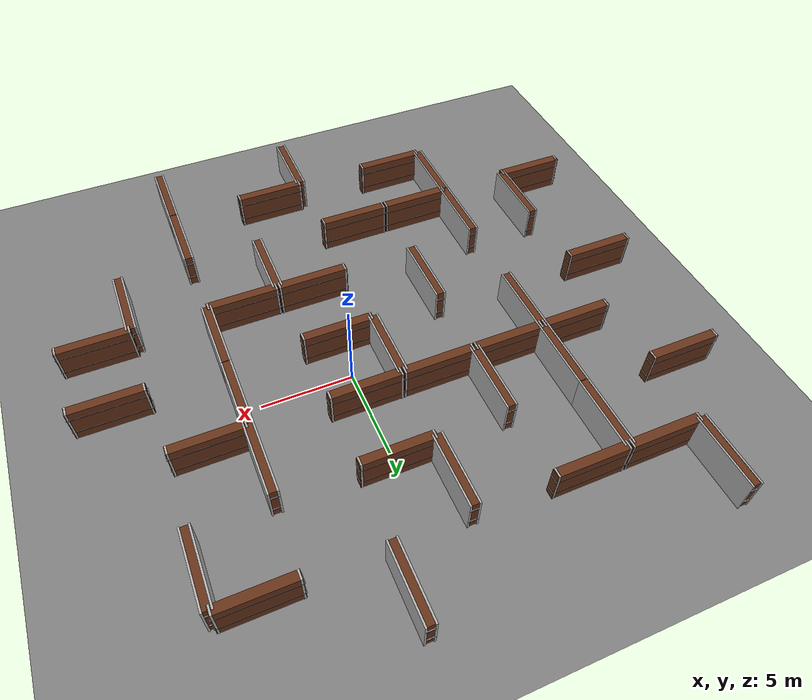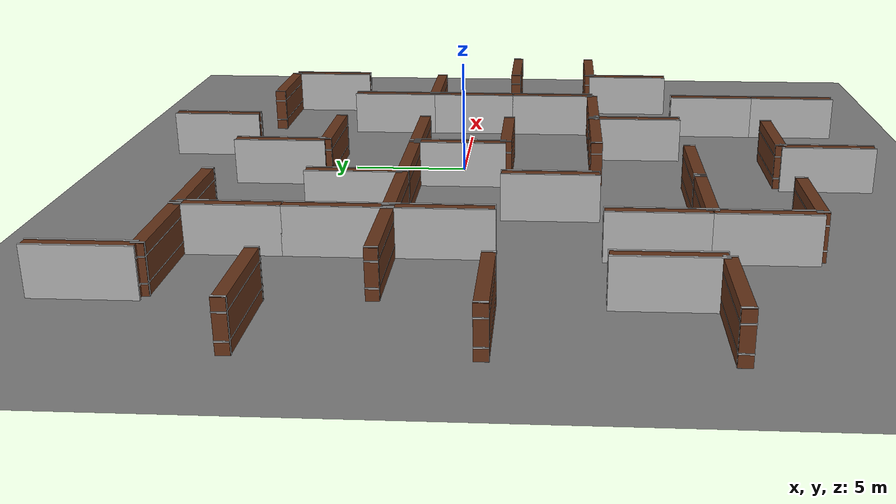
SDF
<?xml version="1.0" ?>
<sdf version="1.9">
  <world name="labyrinth">
    <physics name="1ms" type="ignored">
      <max_step_size>0.001</max_step_size>
      <real_time_factor>1.0</real_time_factor>
    </physics>
    <plugin filename="gz-sim-physics-system" name="gz::sim::systems::Physics"/>
    <plugin filename="gz-sim-user-commands-system" name="gz::sim::systems::UserCommands"/>
    <plugin filename="gz-sim-scene-broadcaster-system" name="gz::sim::systems::SceneBroadcaster"/>
    <plugin filename="gz-sim-sensors-system" name="gz::sim::systems::Sensors"><render_engine>ogre2</render_engine></plugin>
    <plugin filename="gz-sim-imu-system" name="gz::sim::systems::Imu"/>

    <light type="directional" name="sun"><pose>0 0 10 0 0 0</pose></light>
    <model name="ground_plane">
      <static>true</static>
      <pose>0 0 0 0 0 0</pose>
      <link name="link">
        <collision name="collision"><geometry><plane><normal>0 0 1</normal><size>500 500</size></plane></geometry></collision>
        <visual name="visual"><geometry><plane><normal>0 0 1</normal><size>500 500</size></plane></geometry><material><ambient>0.5 0.5 0.5 1</ambient><diffuse>0.5 0.5 0.5 1</diffuse></material></visual>
      </link>
    </model>

    <model name="wall_0">
      <static>true</static>
      <pose>-16.0 6.0 1 0 0 0</pose>
      <link name="link">
        <collision name="col"><geometry><box><size>4.0 0.5 2.0</size></box></geometry></collision>
        <!-- Brown solid core -->
        <visual name="vis_core">
          <geometry><box><size>3.96 0.495 1.98</size></box></geometry>
          <material><ambient>0.4 0.2 0.1 1</ambient><diffuse>0.4 0.2 0.1 1</diffuse></material>
        </visual>
        <!-- Grey horizontal grid lines -->
        <visual name="vis_h1">
          <pose>0 0 -0.5 0 0 0</pose>
          <geometry><box><size>4.04 0.505 0.05</size></box></geometry>
          <material><ambient>0.7 0.7 0.7 1</ambient></material>
        </visual>
        <visual name="vis_h2">
          <pose>0 0 0.5 0 0 0</pose>
          <geometry><box><size>4.04 0.505 0.05</size></box></geometry>
          <material><ambient>0.7 0.7 0.7 1</ambient></material>
        </visual>
        <!-- Grey vertical grid lines -->
        <visual name="vis_v1">
          <pose>1.9 0 0 0 0 0</pose>
          <geometry><box><size>0.1 0.505 2.02</size></box></geometry>
          <material><ambient>0.7 0.7 0.7 1</ambient></material>
        </visual>
        <visual name="vis_v2">
          <pose>-1.9 0 0 0 0 0</pose>
          <geometry><box><size>0.1 0.505 2.02</size></box></geometry>
          <material><ambient>0.7 0.7 0.7 1</ambient></material>
        </visual>
      </link>
    </model>

    <model name="wall_1">
      <static>true</static>
      <pose>2.0 12.0 1 0 0 0</pose>
      <link name="link">
        <collision name="col"><geometry><box><size>0.5 4.0 2.0</size></box></geometry></collision>
        <!-- Brown solid core -->
        <visual name="vis_core">
          <geometry><box><size>0.495 3.96 1.98</size></box></geometry>
          <material><ambient>0.4 0.2 0.1 1</ambient><diffuse>0.4 0.2 0.1 1</diffuse></material>
        </visual>
        <!-- Grey horizontal grid lines -->
        <visual name="vis_h1">
          <pose>0 0 -0.5 0 0 0</pose>
          <geometry><box><size>0.505 4.04 0.05</size></box></geometry>
          <material><ambient>0.7 0.7 0.7 1</ambient></material>
        </visual>
        <visual name="vis_h2">
          <pose>0 0 0.5 0 0 0</pose>
          <geometry><box><size>0.505 4.04 0.05</size></box></geometry>
          <material><ambient>0.7 0.7 0.7 1</ambient></material>
        </visual>
        <!-- Grey vertical grid lines -->
        <visual name="vis_v1">
          <pose>0.2375 0 0 0 0 0</pose>
          <geometry><box><size>0.1 4.04 2.02</size></box></geometry>
          <material><ambient>0.7 0.7 0.7 1</ambient></material>
        </visual>
        <visual name="vis_v2">
          <pose>-0.2375 0 0 0 0 0</pose>
          <geometry><box><size>0.1 4.04 2.02</size></box></geometry>
          <material><ambient>0.7 0.7 0.7 1</ambient></material>
        </visual>
      </link>
    </model>

    <model name="wall_2">
      <static>true</static>
      <pose>-4.0 2.0 1 0 0 0</pose>
      <link name="link">
        <collision name="col"><geometry><box><size>4.0 0.5 2.0</size></box></geometry></collision>
        <!-- Brown solid core -->
        <visual name="vis_core">
          <geometry><box><size>3.96 0.495 1.98</size></box></geometry>
          <material><ambient>0.4 0.2 0.1 1</ambient><diffuse>0.4 0.2 0.1 1</diffuse></material>
        </visual>
        <!-- Grey horizontal grid lines -->
        <visual name="vis_h1">
          <pose>0 0 -0.5 0 0 0</pose>
          <geometry><box><size>4.04 0.505 0.05</size></box></geometry>
          <material><ambient>0.7 0.7 0.7 1</ambient></material>
        </visual>
        <visual name="vis_h2">
          <pose>0 0 0.5 0 0 0</pose>
          <geometry><box><size>4.04 0.505 0.05</size></box></geometry>
          <material><ambient>0.7 0.7 0.7 1</ambient></material>
        </visual>
        <!-- Grey vertical grid lines -->
        <visual name="vis_v1">
          <pose>1.9 0 0 0 0 0</pose>
          <geometry><box><size>0.1 0.505 2.02</size></box></geometry>
          <material><ambient>0.7 0.7 0.7 1</ambient></material>
        </visual>
        <visual name="vis_v2">
          <pose>-1.9 0 0 0 0 0</pose>
          <geometry><box><size>0.1 0.505 2.02</size></box></geometry>
          <material><ambient>0.7 0.7 0.7 1</ambient></material>
        </visual>
      </link>
    </model>

    <model name="wall_3">
      <static>true</static>
      <pose>-10.0 8.0 1 0 0 0</pose>
      <link name="link">
        <collision name="col"><geometry><box><size>0.5 4.0 2.0</size></box></geometry></collision>
        <!-- Brown solid core -->
        <visual name="vis_core">
          <geometry><box><size>0.495 3.96 1.98</size></box></geometry>
          <material><ambient>0.4 0.2 0.1 1</ambient><diffuse>0.4 0.2 0.1 1</diffuse></material>
        </visual>
        <!-- Grey horizontal grid lines -->
        <visual name="vis_h1">
          <pose>0 0 -0.5 0 0 0</pose>
          <geometry><box><size>0.505 4.04 0.05</size></box></geometry>
          <material><ambient>0.7 0.7 0.7 1</ambient></material>
        </visual>
        <visual name="vis_h2">
          <pose>0 0 0.5 0 0 0</pose>
          <geometry><box><size>0.505 4.04 0.05</size></box></geometry>
          <material><ambient>0.7 0.7 0.7 1</ambient></material>
        </visual>
        <!-- Grey vertical grid lines -->
        <visual name="vis_v1">
          <pose>0.2375 0 0 0 0 0</pose>
          <geometry><box><size>0.1 4.04 2.02</size></box></geometry>
          <material><ambient>0.7 0.7 0.7 1</ambient></material>
        </visual>
        <visual name="vis_v2">
          <pose>-0.2375 0 0 0 0 0</pose>
          <geometry><box><size>0.1 4.04 2.02</size></box></geometry>
          <material><ambient>0.7 0.7 0.7 1</ambient></material>
        </visual>
      </link>
    </model>

    <model name="wall_4">
      <static>true</static>
      <pose>0.0 6.0 1 0 0 0</pose>
      <link name="link">
        <collision name="col"><geometry><box><size>4.0 0.5 2.0</size></box></geometry></collision>
        <!-- Brown solid core -->
        <visual name="vis_core">
          <geometry><box><size>3.96 0.495 1.98</size></box></geometry>
          <material><ambient>0.4 0.2 0.1 1</ambient><diffuse>0.4 0.2 0.1 1</diffuse></material>
        </visual>
        <!-- Grey horizontal grid lines -->
        <visual name="vis_h1">
          <pose>0 0 -0.5 0 0 0</pose>
          <geometry><box><size>4.04 0.505 0.05</size></box></geometry>
          <material><ambient>0.7 0.7 0.7 1</ambient></material>
        </visual>
        <visual name="vis_h2">
          <pose>0 0 0.5 0 0 0</pose>
          <geometry><box><size>4.04 0.505 0.05</size></box></geometry>
          <material><ambient>0.7 0.7 0.7 1</ambient></material>
        </visual>
        <!-- Grey vertical grid lines -->
        <visual name="vis_v1">
          <pose>1.9 0 0 0 0 0</pose>
          <geometry><box><size>0.1 0.505 2.02</size></box></geometry>
          <material><ambient>0.7 0.7 0.7 1</ambient></material>
        </visual>
        <visual name="vis_v2">
          <pose>-1.9 0 0 0 0 0</pose>
          <geometry><box><size>0.1 0.505 2.02</size></box></geometry>
          <material><ambient>0.7 0.7 0.7 1</ambient></material>
        </visual>
      </link>
    </model>

    <model name="wall_5">
      <static>true</static>
      <pose>6.0 0.0 1 0 0 0</pose>
      <link name="link">
        <collision name="col"><geometry><box><size>0.5 4.0 2.0</size></box></geometry></collision>
        <!-- Brown solid core -->
        <visual name="vis_core">
          <geometry><box><size>0.495 3.96 1.98</size></box></geometry>
          <material><ambient>0.4 0.2 0.1 1</ambient><diffuse>0.4 0.2 0.1 1</diffuse></material>
        </visual>
        <!-- Grey horizontal grid lines -->
        <visual name="vis_h1">
          <pose>0 0 -0.5 0 0 0</pose>
          <geometry><box><size>0.505 4.04 0.05</size></box></geometry>
          <material><ambient>0.7 0.7 0.7 1</ambient></material>
        </visual>
        <visual name="vis_h2">
          <pose>0 0 0.5 0 0 0</pose>
          <geometry><box><size>0.505 4.04 0.05</size></box></geometry>
          <material><ambient>0.7 0.7 0.7 1</ambient></material>
        </visual>
        <!-- Grey vertical grid lines -->
        <visual name="vis_v1">
          <pose>0.2375 0 0 0 0 0</pose>
          <geometry><box><size>0.1 4.04 2.02</size></box></geometry>
          <material><ambient>0.7 0.7 0.7 1</ambient></material>
        </visual>
        <visual name="vis_v2">
          <pose>-0.2375 0 0 0 0 0</pose>
          <geometry><box><size>0.1 4.04 2.02</size></box></geometry>
          <material><ambient>0.7 0.7 0.7 1</ambient></material>
        </visual>
      </link>
    </model>

    <model name="wall_6">
      <static>true</static>
      <pose>-10.0 4.0 1 0 0 0</pose>
      <link name="link">
        <collision name="col"><geometry><box><size>0.5 4.0 2.0</size></box></geometry></collision>
        <!-- Brown solid core -->
        <visual name="vis_core">
          <geometry><box><size>0.495 3.96 1.98</size></box></geometry>
          <material><ambient>0.4 0.2 0.1 1</ambient><diffuse>0.4 0.2 0.1 1</diffuse></material>
        </visual>
        <!-- Grey horizontal grid lines -->
        <visual name="vis_h1">
          <pose>0 0 -0.5 0 0 0</pose>
          <geometry><box><size>0.505 4.04 0.05</size></box></geometry>
          <material><ambient>0.7 0.7 0.7 1</ambient></material>
        </visual>
        <visual name="vis_h2">
          <pose>0 0 0.5 0 0 0</pose>
          <geometry><box><size>0.505 4.04 0.05</size></box></geometry>
          <material><ambient>0.7 0.7 0.7 1</ambient></material>
        </visual>
        <!-- Grey vertical grid lines -->
        <visual name="vis_v1">
          <pose>0.2375 0 0 0 0 0</pose>
          <geometry><box><size>0.1 4.04 2.02</size></box></geometry>
          <material><ambient>0.7 0.7 0.7 1</ambient></material>
        </visual>
        <visual name="vis_v2">
          <pose>-0.2375 0 0 0 0 0</pose>
          <geometry><box><size>0.1 4.04 2.02</size></box></geometry>
          <material><ambient>0.7 0.7 0.7 1</ambient></material>
        </visual>
      </link>
    </model>

    <model name="wall_7">
      <static>true</static>
      <pose>-8.0 10.0 1 0 0 0</pose>
      <link name="link">
        <collision name="col"><geometry><box><size>4.0 0.5 2.0</size></box></geometry></collision>
        <!-- Brown solid core -->
        <visual name="vis_core">
          <geometry><box><size>3.96 0.495 1.98</size></box></geometry>
          <material><ambient>0.4 0.2 0.1 1</ambient><diffuse>0.4 0.2 0.1 1</diffuse></material>
        </visual>
        <!-- Grey horizontal grid lines -->
        <visual name="vis_h1">
          <pose>0 0 -0.5 0 0 0</pose>
          <geometry><box><size>4.04 0.505 0.05</size></box></geometry>
          <material><ambient>0.7 0.7 0.7 1</ambient></material>
        </visual>
        <visual name="vis_h2">
          <pose>0 0 0.5 0 0 0</pose>
          <geometry><box><size>4.04 0.505 0.05</size></box></geometry>
          <material><ambient>0.7 0.7 0.7 1</ambient></material>
        </visual>
        <!-- Grey vertical grid lines -->
        <visual name="vis_v1">
          <pose>1.9 0 0 0 0 0</pose>
          <geometry><box><size>0.1 0.505 2.02</size></box></geometry>
          <material><ambient>0.7 0.7 0.7 1</ambient></material>
        </visual>
        <visual name="vis_v2">
          <pose>-1.9 0 0 0 0 0</pose>
          <geometry><box><size>0.1 0.505 2.02</size></box></geometry>
          <material><ambient>0.7 0.7 0.7 1</ambient></material>
        </visual>
      </link>
    </model>

    <model name="wall_8">
      <static>true</static>
      <pose>0.0 2.0 1 0 0 0</pose>
      <link name="link">
        <collision name="col"><geometry><box><size>4.0 0.5 2.0</size></box></geometry></collision>
        <!-- Brown solid core -->
        <visual name="vis_core">
          <geometry><box><size>3.96 0.495 1.98</size></box></geometry>
          <material><ambient>0.4 0.2 0.1 1</ambient><diffuse>0.4 0.2 0.1 1</diffuse></material>
        </visual>
        <!-- Grey horizontal grid lines -->
        <visual name="vis_h1">
          <pose>0 0 -0.5 0 0 0</pose>
          <geometry><box><size>4.04 0.505 0.05</size></box></geometry>
          <material><ambient>0.7 0.7 0.7 1</ambient></material>
        </visual>
        <visual name="vis_h2">
          <pose>0 0 0.5 0 0 0</pose>
          <geometry><box><size>4.04 0.505 0.05</size></box></geometry>
          <material><ambient>0.7 0.7 0.7 1</ambient></material>
        </visual>
        <!-- Grey vertical grid lines -->
        <visual name="vis_v1">
          <pose>1.9 0 0 0 0 0</pose>
          <geometry><box><size>0.1 0.505 2.02</size></box></geometry>
          <material><ambient>0.7 0.7 0.7 1</ambient></material>
        </visual>
        <visual name="vis_v2">
          <pose>-1.9 0 0 0 0 0</pose>
          <geometry><box><size>0.1 0.505 2.02</size></box></geometry>
          <material><ambient>0.7 0.7 0.7 1</ambient></material>
        </visual>
      </link>
    </model>

    <model name="wall_9">
      <static>true</static>
      <pose>-14.0 12.0 1 0 0 0</pose>
      <link name="link">
        <collision name="col"><geometry><box><size>0.5 4.0 2.0</size></box></geometry></collision>
        <!-- Brown solid core -->
        <visual name="vis_core">
          <geometry><box><size>0.495 3.96 1.98</size></box></geometry>
          <material><ambient>0.4 0.2 0.1 1</ambient><diffuse>0.4 0.2 0.1 1</diffuse></material>
        </visual>
        <!-- Grey horizontal grid lines -->
        <visual name="vis_h1">
          <pose>0 0 -0.5 0 0 0</pose>
          <geometry><box><size>0.505 4.04 0.05</size></box></geometry>
          <material><ambient>0.7 0.7 0.7 1</ambient></material>
        </visual>
        <visual name="vis_h2">
          <pose>0 0 0.5 0 0 0</pose>
          <geometry><box><size>0.505 4.04 0.05</size></box></geometry>
          <material><ambient>0.7 0.7 0.7 1</ambient></material>
        </visual>
        <!-- Grey vertical grid lines -->
        <visual name="vis_v1">
          <pose>0.2375 0 0 0 0 0</pose>
          <geometry><box><size>0.1 4.04 2.02</size></box></geometry>
          <material><ambient>0.7 0.7 0.7 1</ambient></material>
        </visual>
        <visual name="vis_v2">
          <pose>-0.2375 0 0 0 0 0</pose>
          <geometry><box><size>0.1 4.04 2.02</size></box></geometry>
          <material><ambient>0.7 0.7 0.7 1</ambient></material>
        </visual>
      </link>
    </model>

    <model name="wall_10">
      <static>true</static>
      <pose>6.0 -4.0 1 0 0 0</pose>
      <link name="link">
        <collision name="col"><geometry><box><size>0.5 4.0 2.0</size></box></geometry></collision>
        <!-- Brown solid core -->
        <visual name="vis_core">
          <geometry><box><size>0.495 3.96 1.98</size></box></geometry>
          <material><ambient>0.4 0.2 0.1 1</ambient><diffuse>0.4 0.2 0.1 1</diffuse></material>
        </visual>
        <!-- Grey horizontal grid lines -->
        <visual name="vis_h1">
          <pose>0 0 -0.5 0 0 0</pose>
          <geometry><box><size>0.505 4.04 0.05</size></box></geometry>
          <material><ambient>0.7 0.7 0.7 1</ambient></material>
        </visual>
        <visual name="vis_h2">
          <pose>0 0 0.5 0 0 0</pose>
          <geometry><box><size>0.505 4.04 0.05</size></box></geometry>
          <material><ambient>0.7 0.7 0.7 1</ambient></material>
        </visual>
        <!-- Grey vertical grid lines -->
        <visual name="vis_v1">
          <pose>0.2375 0 0 0 0 0</pose>
          <geometry><box><size>0.1 4.04 2.02</size></box></geometry>
          <material><ambient>0.7 0.7 0.7 1</ambient></material>
        </visual>
        <visual name="vis_v2">
          <pose>-0.2375 0 0 0 0 0</pose>
          <geometry><box><size>0.1 4.04 2.02</size></box></geometry>
          <material><ambient>0.7 0.7 0.7 1</ambient></material>
        </visual>
      </link>
    </model>

    <model name="wall_11">
      <static>true</static>
      <pose>-10.0 -12.0 1 0 0 0</pose>
      <link name="link">
        <collision name="col"><geometry><box><size>0.5 4.0 2.0</size></box></geometry></collision>
        <!-- Brown solid core -->
        <visual name="vis_core">
          <geometry><box><size>0.495 3.96 1.98</size></box></geometry>
          <material><ambient>0.4 0.2 0.1 1</ambient><diffuse>0.4 0.2 0.1 1</diffuse></material>
        </visual>
        <!-- Grey horizontal grid lines -->
        <visual name="vis_h1">
          <pose>0 0 -0.5 0 0 0</pose>
          <geometry><box><size>0.505 4.04 0.05</size></box></geometry>
          <material><ambient>0.7 0.7 0.7 1</ambient></material>
        </visual>
        <visual name="vis_h2">
          <pose>0 0 0.5 0 0 0</pose>
          <geometry><box><size>0.505 4.04 0.05</size></box></geometry>
          <material><ambient>0.7 0.7 0.7 1</ambient></material>
        </visual>
        <!-- Grey vertical grid lines -->
        <visual name="vis_v1">
          <pose>0.2375 0 0 0 0 0</pose>
          <geometry><box><size>0.1 4.04 2.02</size></box></geometry>
          <material><ambient>0.7 0.7 0.7 1</ambient></material>
        </visual>
        <visual name="vis_v2">
          <pose>-0.2375 0 0 0 0 0</pose>
          <geometry><box><size>0.1 4.04 2.02</size></box></geometry>
          <material><ambient>0.7 0.7 0.7 1</ambient></material>
        </visual>
      </link>
    </model>

    <model name="wall_12">
      <static>true</static>
      <pose>10.0 8.0 1 0 0 0</pose>
      <link name="link">
        <collision name="col"><geometry><box><size>0.5 4.0 2.0</size></box></geometry></collision>
        <!-- Brown solid core -->
        <visual name="vis_core">
          <geometry><box><size>0.495 3.96 1.98</size></box></geometry>
          <material><ambient>0.4 0.2 0.1 1</ambient><diffuse>0.4 0.2 0.1 1</diffuse></material>
        </visual>
        <!-- Grey horizontal grid lines -->
        <visual name="vis_h1">
          <pose>0 0 -0.5 0 0 0</pose>
          <geometry><box><size>0.505 4.04 0.05</size></box></geometry>
          <material><ambient>0.7 0.7 0.7 1</ambient></material>
        </visual>
        <visual name="vis_h2">
          <pose>0 0 0.5 0 0 0</pose>
          <geometry><box><size>0.505 4.04 0.05</size></box></geometry>
          <material><ambient>0.7 0.7 0.7 1</ambient></material>
        </visual>
        <!-- Grey vertical grid lines -->
        <visual name="vis_v1">
          <pose>0.2375 0 0 0 0 0</pose>
          <geometry><box><size>0.1 4.04 2.02</size></box></geometry>
          <material><ambient>0.7 0.7 0.7 1</ambient></material>
        </visual>
        <visual name="vis_v2">
          <pose>-0.2375 0 0 0 0 0</pose>
          <geometry><box><size>0.1 4.04 2.02</size></box></geometry>
          <material><ambient>0.7 0.7 0.7 1</ambient></material>
        </visual>
      </link>
    </model>

    <model name="wall_13">
      <static>true</static>
      <pose>6.0 4.0 1 0 0 0</pose>
      <link name="link">
        <collision name="col"><geometry><box><size>0.5 4.0 2.0</size></box></geometry></collision>
        <!-- Brown solid core -->
        <visual name="vis_core">
          <geometry><box><size>0.495 3.96 1.98</size></box></geometry>
          <material><ambient>0.4 0.2 0.1 1</ambient><diffuse>0.4 0.2 0.1 1</diffuse></material>
        </visual>
        <!-- Grey horizontal grid lines -->
        <visual name="vis_h1">
          <pose>0 0 -0.5 0 0 0</pose>
          <geometry><box><size>0.505 4.04 0.05</size></box></geometry>
          <material><ambient>0.7 0.7 0.7 1</ambient></material>
        </visual>
        <visual name="vis_h2">
          <pose>0 0 0.5 0 0 0</pose>
          <geometry><box><size>0.505 4.04 0.05</size></box></geometry>
          <material><ambient>0.7 0.7 0.7 1</ambient></material>
        </visual>
        <!-- Grey vertical grid lines -->
        <visual name="vis_v1">
          <pose>0.2375 0 0 0 0 0</pose>
          <geometry><box><size>0.1 4.04 2.02</size></box></geometry>
          <material><ambient>0.7 0.7 0.7 1</ambient></material>
        </visual>
        <visual name="vis_v2">
          <pose>-0.2375 0 0 0 0 0</pose>
          <geometry><box><size>0.1 4.04 2.02</size></box></geometry>
          <material><ambient>0.7 0.7 0.7 1</ambient></material>
        </visual>
      </link>
    </model>

    <model name="wall_14">
      <static>true</static>
      <pose>-8.0 -10.0 1 0 0 0</pose>
      <link name="link">
        <collision name="col"><geometry><box><size>4.0 0.5 2.0</size></box></geometry></collision>
        <!-- Brown solid core -->
        <visual name="vis_core">
          <geometry><box><size>3.96 0.495 1.98</size></box></geometry>
          <material><ambient>0.4 0.2 0.1 1</ambient><diffuse>0.4 0.2 0.1 1</diffuse></material>
        </visual>
        <!-- Grey horizontal grid lines -->
        <visual name="vis_h1">
          <pose>0 0 -0.5 0 0 0</pose>
          <geometry><box><size>4.04 0.505 0.05</size></box></geometry>
          <material><ambient>0.7 0.7 0.7 1</ambient></material>
        </visual>
        <visual name="vis_h2">
          <pose>0 0 0.5 0 0 0</pose>
          <geometry><box><size>4.04 0.505 0.05</size></box></geometry>
          <material><ambient>0.7 0.7 0.7 1</ambient></material>
        </visual>
        <!-- Grey vertical grid lines -->
        <visual name="vis_v1">
          <pose>1.9 0 0 0 0 0</pose>
          <geometry><box><size>0.1 0.505 2.02</size></box></geometry>
          <material><ambient>0.7 0.7 0.7 1</ambient></material>
        </visual>
        <visual name="vis_v2">
          <pose>-1.9 0 0 0 0 0</pose>
          <geometry><box><size>0.1 0.505 2.02</size></box></geometry>
          <material><ambient>0.7 0.7 0.7 1</ambient></material>
        </visual>
      </link>
    </model>

    <model name="wall_15">
      <static>true</static>
      <pose>-12.0 2.0 1 0 0 0</pose>
      <link name="link">
        <collision name="col"><geometry><box><size>4.0 0.5 2.0</size></box></geometry></collision>
        <!-- Brown solid core -->
        <visual name="vis_core">
          <geometry><box><size>3.96 0.495 1.98</size></box></geometry>
          <material><ambient>0.4 0.2 0.1 1</ambient><diffuse>0.4 0.2 0.1 1</diffuse></material>
        </visual>
        <!-- Grey horizontal grid lines -->
        <visual name="vis_h1">
          <pose>0 0 -0.5 0 0 0</pose>
          <geometry><box><size>4.04 0.505 0.05</size></box></geometry>
          <material><ambient>0.7 0.7 0.7 1</ambient></material>
        </visual>
        <visual name="vis_h2">
          <pose>0 0 0.5 0 0 0</pose>
          <geometry><box><size>4.04 0.505 0.05</size></box></geometry>
          <material><ambient>0.7 0.7 0.7 1</ambient></material>
        </visual>
        <!-- Grey vertical grid lines -->
        <visual name="vis_v1">
          <pose>1.9 0 0 0 0 0</pose>
          <geometry><box><size>0.1 0.505 2.02</size></box></geometry>
          <material><ambient>0.7 0.7 0.7 1</ambient></material>
        </visual>
        <visual name="vis_v2">
          <pose>-1.9 0 0 0 0 0</pose>
          <geometry><box><size>0.1 0.505 2.02</size></box></geometry>
          <material><ambient>0.7 0.7 0.7 1</ambient></material>
        </visual>
      </link>
    </model>

    <model name="wall_16">
      <static>true</static>
      <pose>2.0 -8.0 1 0 0 0</pose>
      <link name="link">
        <collision name="col"><geometry><box><size>0.5 4.0 2.0</size></box></geometry></collision>
        <!-- Brown solid core -->
        <visual name="vis_core">
          <geometry><box><size>0.495 3.96 1.98</size></box></geometry>
          <material><ambient>0.4 0.2 0.1 1</ambient><diffuse>0.4 0.2 0.1 1</diffuse></material>
        </visual>
        <!-- Grey horizontal grid lines -->
        <visual name="vis_h1">
          <pose>0 0 -0.5 0 0 0</pose>
          <geometry><box><size>0.505 4.04 0.05</size></box></geometry>
          <material><ambient>0.7 0.7 0.7 1</ambient></material>
        </visual>
        <visual name="vis_h2">
          <pose>0 0 0.5 0 0 0</pose>
          <geometry><box><size>0.505 4.04 0.05</size></box></geometry>
          <material><ambient>0.7 0.7 0.7 1</ambient></material>
        </visual>
        <!-- Grey vertical grid lines -->
        <visual name="vis_v1">
          <pose>0.2375 0 0 0 0 0</pose>
          <geometry><box><size>0.1 4.04 2.02</size></box></geometry>
          <material><ambient>0.7 0.7 0.7 1</ambient></material>
        </visual>
        <visual name="vis_v2">
          <pose>-0.2375 0 0 0 0 0</pose>
          <geometry><box><size>0.1 4.04 2.02</size></box></geometry>
          <material><ambient>0.7 0.7 0.7 1</ambient></material>
        </visual>
      </link>
    </model>

    <model name="wall_17">
      <static>true</static>
      <pose>-16.0 -10.0 1 0 0 0</pose>
      <link name="link">
        <collision name="col"><geometry><box><size>4.0 0.5 2.0</size></box></geometry></collision>
        <!-- Brown solid core -->
        <visual name="vis_core">
          <geometry><box><size>3.96 0.495 1.98</size></box></geometry>
          <material><ambient>0.4 0.2 0.1 1</ambient><diffuse>0.4 0.2 0.1 1</diffuse></material>
        </visual>
        <!-- Grey horizontal grid lines -->
        <visual name="vis_h1">
          <pose>0 0 -0.5 0 0 0</pose>
          <geometry><box><size>4.04 0.505 0.05</size></box></geometry>
          <material><ambient>0.7 0.7 0.7 1</ambient></material>
        </visual>
        <visual name="vis_h2">
          <pose>0 0 0.5 0 0 0</pose>
          <geometry><box><size>4.04 0.505 0.05</size></box></geometry>
          <material><ambient>0.7 0.7 0.7 1</ambient></material>
        </visual>
        <!-- Grey vertical grid lines -->
        <visual name="vis_v1">
          <pose>1.9 0 0 0 0 0</pose>
          <geometry><box><size>0.1 0.505 2.02</size></box></geometry>
          <material><ambient>0.7 0.7 0.7 1</ambient></material>
        </visual>
        <visual name="vis_v2">
          <pose>-1.9 0 0 0 0 0</pose>
          <geometry><box><size>0.1 0.505 2.02</size></box></geometry>
          <material><ambient>0.7 0.7 0.7 1</ambient></material>
        </visual>
      </link>
    </model>

    <model name="wall_18">
      <static>true</static>
      <pose>-2.0 8.0 1 0 0 0</pose>
      <link name="link">
        <collision name="col"><geometry><box><size>0.5 4.0 2.0</size></box></geometry></collision>
        <!-- Brown solid core -->
        <visual name="vis_core">
          <geometry><box><size>0.495 3.96 1.98</size></box></geometry>
          <material><ambient>0.4 0.2 0.1 1</ambient><diffuse>0.4 0.2 0.1 1</diffuse></material>
        </visual>
        <!-- Grey horizontal grid lines -->
        <visual name="vis_h1">
          <pose>0 0 -0.5 0 0 0</pose>
          <geometry><box><size>0.505 4.04 0.05</size></box></geometry>
          <material><ambient>0.7 0.7 0.7 1</ambient></material>
        </visual>
        <visual name="vis_h2">
          <pose>0 0 0.5 0 0 0</pose>
          <geometry><box><size>0.505 4.04 0.05</size></box></geometry>
          <material><ambient>0.7 0.7 0.7 1</ambient></material>
        </visual>
        <!-- Grey vertical grid lines -->
        <visual name="vis_v1">
          <pose>0.2375 0 0 0 0 0</pose>
          <geometry><box><size>0.1 4.04 2.02</size></box></geometry>
          <material><ambient>0.7 0.7 0.7 1</ambient></material>
        </visual>
        <visual name="vis_v2">
          <pose>-0.2375 0 0 0 0 0</pose>
          <geometry><box><size>0.1 4.04 2.02</size></box></geometry>
          <material><ambient>0.7 0.7 0.7 1</ambient></material>
        </visual>
      </link>
    </model>

    <model name="wall_19">
      <static>true</static>
      <pose>-10.0 -8.0 1 0 0 0</pose>
      <link name="link">
        <collision name="col"><geometry><box><size>0.5 4.0 2.0</size></box></geometry></collision>
        <!-- Brown solid core -->
        <visual name="vis_core">
          <geometry><box><size>0.495 3.96 1.98</size></box></geometry>
          <material><ambient>0.4 0.2 0.1 1</ambient><diffuse>0.4 0.2 0.1 1</diffuse></material>
        </visual>
        <!-- Grey horizontal grid lines -->
        <visual name="vis_h1">
          <pose>0 0 -0.5 0 0 0</pose>
          <geometry><box><size>0.505 4.04 0.05</size></box></geometry>
          <material><ambient>0.7 0.7 0.7 1</ambient></material>
        </visual>
        <visual name="vis_h2">
          <pose>0 0 0.5 0 0 0</pose>
          <geometry><box><size>0.505 4.04 0.05</size></box></geometry>
          <material><ambient>0.7 0.7 0.7 1</ambient></material>
        </visual>
        <!-- Grey vertical grid lines -->
        <visual name="vis_v1">
          <pose>0.2375 0 0 0 0 0</pose>
          <geometry><box><size>0.1 4.04 2.02</size></box></geometry>
          <material><ambient>0.7 0.7 0.7 1</ambient></material>
        </visual>
        <visual name="vis_v2">
          <pose>-0.2375 0 0 0 0 0</pose>
          <geometry><box><size>0.1 4.04 2.02</size></box></geometry>
          <material><ambient>0.7 0.7 0.7 1</ambient></material>
        </visual>
      </link>
    </model>

    <model name="wall_20">
      <static>true</static>
      <pose>6.0 -16.0 1 0 0 0</pose>
      <link name="link">
        <collision name="col"><geometry><box><size>0.5 4.0 2.0</size></box></geometry></collision>
        <!-- Brown solid core -->
        <visual name="vis_core">
          <geometry><box><size>0.495 3.96 1.98</size></box></geometry>
          <material><ambient>0.4 0.2 0.1 1</ambient><diffuse>0.4 0.2 0.1 1</diffuse></material>
        </visual>
        <!-- Grey horizontal grid lines -->
        <visual name="vis_h1">
          <pose>0 0 -0.5 0 0 0</pose>
          <geometry><box><size>0.505 4.04 0.05</size></box></geometry>
          <material><ambient>0.7 0.7 0.7 1</ambient></material>
        </visual>
        <visual name="vis_h2">
          <pose>0 0 0.5 0 0 0</pose>
          <geometry><box><size>0.505 4.04 0.05</size></box></geometry>
          <material><ambient>0.7 0.7 0.7 1</ambient></material>
        </visual>
        <!-- Grey vertical grid lines -->
        <visual name="vis_v1">
          <pose>0.2375 0 0 0 0 0</pose>
          <geometry><box><size>0.1 4.04 2.02</size></box></geometry>
          <material><ambient>0.7 0.7 0.7 1</ambient></material>
        </visual>
        <visual name="vis_v2">
          <pose>-0.2375 0 0 0 0 0</pose>
          <geometry><box><size>0.1 4.04 2.02</size></box></geometry>
          <material><ambient>0.7 0.7 0.7 1</ambient></material>
        </visual>
      </link>
    </model>

    <model name="wall_21">
      <static>true</static>
      <pose>-8.0 -14.0 1 0 0 0</pose>
      <link name="link">
        <collision name="col"><geometry><box><size>4.0 0.5 2.0</size></box></geometry></collision>
        <!-- Brown solid core -->
        <visual name="vis_core">
          <geometry><box><size>3.96 0.495 1.98</size></box></geometry>
          <material><ambient>0.4 0.2 0.1 1</ambient><diffuse>0.4 0.2 0.1 1</diffuse></material>
        </visual>
        <!-- Grey horizontal grid lines -->
        <visual name="vis_h1">
          <pose>0 0 -0.5 0 0 0</pose>
          <geometry><box><size>4.04 0.505 0.05</size></box></geometry>
          <material><ambient>0.7 0.7 0.7 1</ambient></material>
        </visual>
        <visual name="vis_h2">
          <pose>0 0 0.5 0 0 0</pose>
          <geometry><box><size>4.04 0.505 0.05</size></box></geometry>
          <material><ambient>0.7 0.7 0.7 1</ambient></material>
        </visual>
        <!-- Grey vertical grid lines -->
        <visual name="vis_v1">
          <pose>1.9 0 0 0 0 0</pose>
          <geometry><box><size>0.1 0.505 2.02</size></box></geometry>
          <material><ambient>0.7 0.7 0.7 1</ambient></material>
        </visual>
        <visual name="vis_v2">
          <pose>-1.9 0 0 0 0 0</pose>
          <geometry><box><size>0.1 0.505 2.02</size></box></geometry>
          <material><ambient>0.7 0.7 0.7 1</ambient></material>
        </visual>
      </link>
    </model>

    <model name="wall_22">
      <static>true</static>
      <pose>4.0 -6.0 1 0 0 0</pose>
      <link name="link">
        <collision name="col"><geometry><box><size>4.0 0.5 2.0</size></box></geometry></collision>
        <!-- Brown solid core -->
        <visual name="vis_core">
          <geometry><box><size>3.96 0.495 1.98</size></box></geometry>
          <material><ambient>0.4 0.2 0.1 1</ambient><diffuse>0.4 0.2 0.1 1</diffuse></material>
        </visual>
        <!-- Grey horizontal grid lines -->
        <visual name="vis_h1">
          <pose>0 0 -0.5 0 0 0</pose>
          <geometry><box><size>4.04 0.505 0.05</size></box></geometry>
          <material><ambient>0.7 0.7 0.7 1</ambient></material>
        </visual>
        <visual name="vis_h2">
          <pose>0 0 0.5 0 0 0</pose>
          <geometry><box><size>4.04 0.505 0.05</size></box></geometry>
          <material><ambient>0.7 0.7 0.7 1</ambient></material>
        </visual>
        <!-- Grey vertical grid lines -->
        <visual name="vis_v1">
          <pose>1.9 0 0 0 0 0</pose>
          <geometry><box><size>0.1 0.505 2.02</size></box></geometry>
          <material><ambient>0.7 0.7 0.7 1</ambient></material>
        </visual>
        <visual name="vis_v2">
          <pose>-1.9 0 0 0 0 0</pose>
          <geometry><box><size>0.1 0.505 2.02</size></box></geometry>
          <material><ambient>0.7 0.7 0.7 1</ambient></material>
        </visual>
      </link>
    </model>

    <model name="wall_23">
      <static>true</static>
      <pose>-2.0 0.0 1 0 0 0</pose>
      <link name="link">
        <collision name="col"><geometry><box><size>0.5 4.0 2.0</size></box></geometry></collision>
        <!-- Brown solid core -->
        <visual name="vis_core">
          <geometry><box><size>0.495 3.96 1.98</size></box></geometry>
          <material><ambient>0.4 0.2 0.1 1</ambient><diffuse>0.4 0.2 0.1 1</diffuse></material>
        </visual>
        <!-- Grey horizontal grid lines -->
        <visual name="vis_h1">
          <pose>0 0 -0.5 0 0 0</pose>
          <geometry><box><size>0.505 4.04 0.05</size></box></geometry>
          <material><ambient>0.7 0.7 0.7 1</ambient></material>
        </visual>
        <visual name="vis_h2">
          <pose>0 0 0.5 0 0 0</pose>
          <geometry><box><size>0.505 4.04 0.05</size></box></geometry>
          <material><ambient>0.7 0.7 0.7 1</ambient></material>
        </visual>
        <!-- Grey vertical grid lines -->
        <visual name="vis_v1">
          <pose>0.2375 0 0 0 0 0</pose>
          <geometry><box><size>0.1 4.04 2.02</size></box></geometry>
          <material><ambient>0.7 0.7 0.7 1</ambient></material>
        </visual>
        <visual name="vis_v2">
          <pose>-0.2375 0 0 0 0 0</pose>
          <geometry><box><size>0.1 4.04 2.02</size></box></geometry>
          <material><ambient>0.7 0.7 0.7 1</ambient></material>
        </visual>
      </link>
    </model>

    <model name="wall_24">
      <static>true</static>
      <pose>10.0 -8.0 1 0 0 0</pose>
      <link name="link">
        <collision name="col"><geometry><box><size>0.5 4.0 2.0</size></box></geometry></collision>
        <!-- Brown solid core -->
        <visual name="vis_core">
          <geometry><box><size>0.495 3.96 1.98</size></box></geometry>
          <material><ambient>0.4 0.2 0.1 1</ambient><diffuse>0.4 0.2 0.1 1</diffuse></material>
        </visual>
        <!-- Grey horizontal grid lines -->
        <visual name="vis_h1">
          <pose>0 0 -0.5 0 0 0</pose>
          <geometry><box><size>0.505 4.04 0.05</size></box></geometry>
          <material><ambient>0.7 0.7 0.7 1</ambient></material>
        </visual>
        <visual name="vis_h2">
          <pose>0 0 0.5 0 0 0</pose>
          <geometry><box><size>0.505 4.04 0.05</size></box></geometry>
          <material><ambient>0.7 0.7 0.7 1</ambient></material>
        </visual>
        <!-- Grey vertical grid lines -->
        <visual name="vis_v1">
          <pose>0.2375 0 0 0 0 0</pose>
          <geometry><box><size>0.1 4.04 2.02</size></box></geometry>
          <material><ambient>0.7 0.7 0.7 1</ambient></material>
        </visual>
        <visual name="vis_v2">
          <pose>-0.2375 0 0 0 0 0</pose>
          <geometry><box><size>0.1 4.04 2.02</size></box></geometry>
          <material><ambient>0.7 0.7 0.7 1</ambient></material>
        </visual>
      </link>
    </model>

    <model name="wall_25">
      <static>true</static>
      <pose>-12.0 10.0 1 0 0 0</pose>
      <link name="link">
        <collision name="col"><geometry><box><size>4.0 0.5 2.0</size></box></geometry></collision>
        <!-- Brown solid core -->
        <visual name="vis_core">
          <geometry><box><size>3.96 0.495 1.98</size></box></geometry>
          <material><ambient>0.4 0.2 0.1 1</ambient><diffuse>0.4 0.2 0.1 1</diffuse></material>
        </visual>
        <!-- Grey horizontal grid lines -->
        <visual name="vis_h1">
          <pose>0 0 -0.5 0 0 0</pose>
          <geometry><box><size>4.04 0.505 0.05</size></box></geometry>
          <material><ambient>0.7 0.7 0.7 1</ambient></material>
        </visual>
        <visual name="vis_h2">
          <pose>0 0 0.5 0 0 0</pose>
          <geometry><box><size>4.04 0.505 0.05</size></box></geometry>
          <material><ambient>0.7 0.7 0.7 1</ambient></material>
        </visual>
        <!-- Grey vertical grid lines -->
        <visual name="vis_v1">
          <pose>1.9 0 0 0 0 0</pose>
          <geometry><box><size>0.1 0.505 2.02</size></box></geometry>
          <material><ambient>0.7 0.7 0.7 1</ambient></material>
        </visual>
        <visual name="vis_v2">
          <pose>-1.9 0 0 0 0 0</pose>
          <geometry><box><size>0.1 0.505 2.02</size></box></geometry>
          <material><ambient>0.7 0.7 0.7 1</ambient></material>
        </visual>
      </link>
    </model>

    <model name="wall_26">
      <static>true</static>
      <pose>12.0 -2.0 1 0 0 0</pose>
      <link name="link">
        <collision name="col"><geometry><box><size>4.0 0.5 2.0</size></box></geometry></collision>
        <!-- Brown solid core -->
        <visual name="vis_core">
          <geometry><box><size>3.96 0.495 1.98</size></box></geometry>
          <material><ambient>0.4 0.2 0.1 1</ambient><diffuse>0.4 0.2 0.1 1</diffuse></material>
        </visual>
        <!-- Grey horizontal grid lines -->
        <visual name="vis_h1">
          <pose>0 0 -0.5 0 0 0</pose>
          <geometry><box><size>4.04 0.505 0.05</size></box></geometry>
          <material><ambient>0.7 0.7 0.7 1</ambient></material>
        </visual>
        <visual name="vis_h2">
          <pose>0 0 0.5 0 0 0</pose>
          <geometry><box><size>4.04 0.505 0.05</size></box></geometry>
          <material><ambient>0.7 0.7 0.7 1</ambient></material>
        </visual>
        <!-- Grey vertical grid lines -->
        <visual name="vis_v1">
          <pose>1.9 0 0 0 0 0</pose>
          <geometry><box><size>0.1 0.505 2.02</size></box></geometry>
          <material><ambient>0.7 0.7 0.7 1</ambient></material>
        </visual>
        <visual name="vis_v2">
          <pose>-1.9 0 0 0 0 0</pose>
          <geometry><box><size>0.1 0.505 2.02</size></box></geometry>
          <material><ambient>0.7 0.7 0.7 1</ambient></material>
        </visual>
      </link>
    </model>

    <model name="wall_27">
      <static>true</static>
      <pose>-6.0 4.0 1 0 0 0</pose>
      <link name="link">
        <collision name="col"><geometry><box><size>0.5 4.0 2.0</size></box></geometry></collision>
        <!-- Brown solid core -->
        <visual name="vis_core">
          <geometry><box><size>0.495 3.96 1.98</size></box></geometry>
          <material><ambient>0.4 0.2 0.1 1</ambient><diffuse>0.4 0.2 0.1 1</diffuse></material>
        </visual>
        <!-- Grey horizontal grid lines -->
        <visual name="vis_h1">
          <pose>0 0 -0.5 0 0 0</pose>
          <geometry><box><size>0.505 4.04 0.05</size></box></geometry>
          <material><ambient>0.7 0.7 0.7 1</ambient></material>
        </visual>
        <visual name="vis_h2">
          <pose>0 0 0.5 0 0 0</pose>
          <geometry><box><size>0.505 4.04 0.05</size></box></geometry>
          <material><ambient>0.7 0.7 0.7 1</ambient></material>
        </visual>
        <!-- Grey vertical grid lines -->
        <visual name="vis_v1">
          <pose>0.2375 0 0 0 0 0</pose>
          <geometry><box><size>0.1 4.04 2.02</size></box></geometry>
          <material><ambient>0.7 0.7 0.7 1</ambient></material>
        </visual>
        <visual name="vis_v2">
          <pose>-0.2375 0 0 0 0 0</pose>
          <geometry><box><size>0.1 4.04 2.02</size></box></geometry>
          <material><ambient>0.7 0.7 0.7 1</ambient></material>
        </visual>
      </link>
    </model>

    <model name="wall_28">
      <static>true</static>
      <pose>0.0 -6.0 1 0 0 0</pose>
      <link name="link">
        <collision name="col"><geometry><box><size>4.0 0.5 2.0</size></box></geometry></collision>
        <!-- Brown solid core -->
        <visual name="vis_core">
          <geometry><box><size>3.96 0.495 1.98</size></box></geometry>
          <material><ambient>0.4 0.2 0.1 1</ambient><diffuse>0.4 0.2 0.1 1</diffuse></material>
        </visual>
        <!-- Grey horizontal grid lines -->
        <visual name="vis_h1">
          <pose>0 0 -0.5 0 0 0</pose>
          <geometry><box><size>4.04 0.505 0.05</size></box></geometry>
          <material><ambient>0.7 0.7 0.7 1</ambient></material>
        </visual>
        <visual name="vis_h2">
          <pose>0 0 0.5 0 0 0</pose>
          <geometry><box><size>4.04 0.505 0.05</size></box></geometry>
          <material><ambient>0.7 0.7 0.7 1</ambient></material>
        </visual>
        <!-- Grey vertical grid lines -->
        <visual name="vis_v1">
          <pose>1.9 0 0 0 0 0</pose>
          <geometry><box><size>0.1 0.505 2.02</size></box></geometry>
          <material><ambient>0.7 0.7 0.7 1</ambient></material>
        </visual>
        <visual name="vis_v2">
          <pose>-1.9 0 0 0 0 0</pose>
          <geometry><box><size>0.1 0.505 2.02</size></box></geometry>
          <material><ambient>0.7 0.7 0.7 1</ambient></material>
        </visual>
      </link>
    </model>

    <model name="wall_29">
      <static>true</static>
      <pose>12.0 -6.0 1 0 0 0</pose>
      <link name="link">
        <collision name="col"><geometry><box><size>4.0 0.5 2.0</size></box></geometry></collision>
        <!-- Brown solid core -->
        <visual name="vis_core">
          <geometry><box><size>3.96 0.495 1.98</size></box></geometry>
          <material><ambient>0.4 0.2 0.1 1</ambient><diffuse>0.4 0.2 0.1 1</diffuse></material>
        </visual>
        <!-- Grey horizontal grid lines -->
        <visual name="vis_h1">
          <pose>0 0 -0.5 0 0 0</pose>
          <geometry><box><size>4.04 0.505 0.05</size></box></geometry>
          <material><ambient>0.7 0.7 0.7 1</ambient></material>
        </visual>
        <visual name="vis_h2">
          <pose>0 0 0.5 0 0 0</pose>
          <geometry><box><size>4.04 0.505 0.05</size></box></geometry>
          <material><ambient>0.7 0.7 0.7 1</ambient></material>
        </visual>
        <!-- Grey vertical grid lines -->
        <visual name="vis_v1">
          <pose>1.9 0 0 0 0 0</pose>
          <geometry><box><size>0.1 0.505 2.02</size></box></geometry>
          <material><ambient>0.7 0.7 0.7 1</ambient></material>
        </visual>
        <visual name="vis_v2">
          <pose>-1.9 0 0 0 0 0</pose>
          <geometry><box><size>0.1 0.505 2.02</size></box></geometry>
          <material><ambient>0.7 0.7 0.7 1</ambient></material>
        </visual>
      </link>
    </model>

    <model name="wall_30">
      <static>true</static>
      <pose>8.0 2.0 1 0 0 0</pose>
      <link name="link">
        <collision name="col"><geometry><box><size>4.0 0.5 2.0</size></box></geometry></collision>
        <!-- Brown solid core -->
        <visual name="vis_core">
          <geometry><box><size>3.96 0.495 1.98</size></box></geometry>
          <material><ambient>0.4 0.2 0.1 1</ambient><diffuse>0.4 0.2 0.1 1</diffuse></material>
        </visual>
        <!-- Grey horizontal grid lines -->
        <visual name="vis_h1">
          <pose>0 0 -0.5 0 0 0</pose>
          <geometry><box><size>4.04 0.505 0.05</size></box></geometry>
          <material><ambient>0.7 0.7 0.7 1</ambient></material>
        </visual>
        <visual name="vis_h2">
          <pose>0 0 0.5 0 0 0</pose>
          <geometry><box><size>4.04 0.505 0.05</size></box></geometry>
          <material><ambient>0.7 0.7 0.7 1</ambient></material>
        </visual>
        <!-- Grey vertical grid lines -->
        <visual name="vis_v1">
          <pose>1.9 0 0 0 0 0</pose>
          <geometry><box><size>0.1 0.505 2.02</size></box></geometry>
          <material><ambient>0.7 0.7 0.7 1</ambient></material>
        </visual>
        <visual name="vis_v2">
          <pose>-1.9 0 0 0 0 0</pose>
          <geometry><box><size>0.1 0.505 2.02</size></box></geometry>
          <material><ambient>0.7 0.7 0.7 1</ambient></material>
        </visual>
      </link>
    </model>

    <model name="wall_31">
      <static>true</static>
      <pose>6.0 -12.0 1 0 0 0</pose>
      <link name="link">
        <collision name="col"><geometry><box><size>0.5 4.0 2.0</size></box></geometry></collision>
        <!-- Brown solid core -->
        <visual name="vis_core">
          <geometry><box><size>0.495 3.96 1.98</size></box></geometry>
          <material><ambient>0.4 0.2 0.1 1</ambient><diffuse>0.4 0.2 0.1 1</diffuse></material>
        </visual>
        <!-- Grey horizontal grid lines -->
        <visual name="vis_h1">
          <pose>0 0 -0.5 0 0 0</pose>
          <geometry><box><size>0.505 4.04 0.05</size></box></geometry>
          <material><ambient>0.7 0.7 0.7 1</ambient></material>
        </visual>
        <visual name="vis_h2">
          <pose>0 0 0.5 0 0 0</pose>
          <geometry><box><size>0.505 4.04 0.05</size></box></geometry>
          <material><ambient>0.7 0.7 0.7 1</ambient></material>
        </visual>
        <!-- Grey vertical grid lines -->
        <visual name="vis_v1">
          <pose>0.2375 0 0 0 0 0</pose>
          <geometry><box><size>0.1 4.04 2.02</size></box></geometry>
          <material><ambient>0.7 0.7 0.7 1</ambient></material>
        </visual>
        <visual name="vis_v2">
          <pose>-0.2375 0 0 0 0 0</pose>
          <geometry><box><size>0.1 4.04 2.02</size></box></geometry>
          <material><ambient>0.7 0.7 0.7 1</ambient></material>
        </visual>
      </link>
    </model>

    <model name="wall_32">
      <static>true</static>
      <pose>-10.0 0.0 1 0 0 0</pose>
      <link name="link">
        <collision name="col"><geometry><box><size>0.5 4.0 2.0</size></box></geometry></collision>
        <!-- Brown solid core -->
        <visual name="vis_core">
          <geometry><box><size>0.495 3.96 1.98</size></box></geometry>
          <material><ambient>0.4 0.2 0.1 1</ambient><diffuse>0.4 0.2 0.1 1</diffuse></material>
        </visual>
        <!-- Grey horizontal grid lines -->
        <visual name="vis_h1">
          <pose>0 0 -0.5 0 0 0</pose>
          <geometry><box><size>0.505 4.04 0.05</size></box></geometry>
          <material><ambient>0.7 0.7 0.7 1</ambient></material>
        </visual>
        <visual name="vis_h2">
          <pose>0 0 0.5 0 0 0</pose>
          <geometry><box><size>0.505 4.04 0.05</size></box></geometry>
          <material><ambient>0.7 0.7 0.7 1</ambient></material>
        </visual>
        <!-- Grey vertical grid lines -->
        <visual name="vis_v1">
          <pose>0.2375 0 0 0 0 0</pose>
          <geometry><box><size>0.1 4.04 2.02</size></box></geometry>
          <material><ambient>0.7 0.7 0.7 1</ambient></material>
        </visual>
        <visual name="vis_v2">
          <pose>-0.2375 0 0 0 0 0</pose>
          <geometry><box><size>0.1 4.04 2.02</size></box></geometry>
          <material><ambient>0.7 0.7 0.7 1</ambient></material>
        </visual>
      </link>
    </model>

    <model name="wall_33">
      <static>true</static>
      <pose>8.0 10.0 1 0 0 0</pose>
      <link name="link">
        <collision name="col"><geometry><box><size>4.0 0.5 2.0</size></box></geometry></collision>
        <!-- Brown solid core -->
        <visual name="vis_core">
          <geometry><box><size>3.96 0.495 1.98</size></box></geometry>
          <material><ambient>0.4 0.2 0.1 1</ambient><diffuse>0.4 0.2 0.1 1</diffuse></material>
        </visual>
        <!-- Grey horizontal grid lines -->
        <visual name="vis_h1">
          <pose>0 0 -0.5 0 0 0</pose>
          <geometry><box><size>4.04 0.505 0.05</size></box></geometry>
          <material><ambient>0.7 0.7 0.7 1</ambient></material>
        </visual>
        <visual name="vis_h2">
          <pose>0 0 0.5 0 0 0</pose>
          <geometry><box><size>4.04 0.505 0.05</size></box></geometry>
          <material><ambient>0.7 0.7 0.7 1</ambient></material>
        </visual>
        <!-- Grey vertical grid lines -->
        <visual name="vis_v1">
          <pose>1.9 0 0 0 0 0</pose>
          <geometry><box><size>0.1 0.505 2.02</size></box></geometry>
          <material><ambient>0.7 0.7 0.7 1</ambient></material>
        </visual>
        <visual name="vis_v2">
          <pose>-1.9 0 0 0 0 0</pose>
          <geometry><box><size>0.1 0.505 2.02</size></box></geometry>
          <material><ambient>0.7 0.7 0.7 1</ambient></material>
        </visual>
      </link>
    </model>

    <model name="wall_34">
      <static>true</static>
      <pose>-6.0 -4.0 1 0 0 0</pose>
      <link name="link">
        <collision name="col"><geometry><box><size>0.5 4.0 2.0</size></box></geometry></collision>
        <!-- Brown solid core -->
        <visual name="vis_core">
          <geometry><box><size>0.495 3.96 1.98</size></box></geometry>
          <material><ambient>0.4 0.2 0.1 1</ambient><diffuse>0.4 0.2 0.1 1</diffuse></material>
        </visual>
        <!-- Grey horizontal grid lines -->
        <visual name="vis_h1">
          <pose>0 0 -0.5 0 0 0</pose>
          <geometry><box><size>0.505 4.04 0.05</size></box></geometry>
          <material><ambient>0.7 0.7 0.7 1</ambient></material>
        </visual>
        <visual name="vis_h2">
          <pose>0 0 0.5 0 0 0</pose>
          <geometry><box><size>0.505 4.04 0.05</size></box></geometry>
          <material><ambient>0.7 0.7 0.7 1</ambient></material>
        </visual>
        <!-- Grey vertical grid lines -->
        <visual name="vis_v1">
          <pose>0.2375 0 0 0 0 0</pose>
          <geometry><box><size>0.1 4.04 2.02</size></box></geometry>
          <material><ambient>0.7 0.7 0.7 1</ambient></material>
        </visual>
        <visual name="vis_v2">
          <pose>-0.2375 0 0 0 0 0</pose>
          <geometry><box><size>0.1 4.04 2.02</size></box></geometry>
          <material><ambient>0.7 0.7 0.7 1</ambient></material>
        </visual>
      </link>
    </model>

    <model name="wall_35">
      <static>true</static>
      <pose>-14.0 -8.0 1 0 0 0</pose>
      <link name="link">
        <collision name="col"><geometry><box><size>0.5 4.0 2.0</size></box></geometry></collision>
        <!-- Brown solid core -->
        <visual name="vis_core">
          <geometry><box><size>0.495 3.96 1.98</size></box></geometry>
          <material><ambient>0.4 0.2 0.1 1</ambient><diffuse>0.4 0.2 0.1 1</diffuse></material>
        </visual>
        <!-- Grey horizontal grid lines -->
        <visual name="vis_h1">
          <pose>0 0 -0.5 0 0 0</pose>
          <geometry><box><size>0.505 4.04 0.05</size></box></geometry>
          <material><ambient>0.7 0.7 0.7 1</ambient></material>
        </visual>
        <visual name="vis_h2">
          <pose>0 0 0.5 0 0 0</pose>
          <geometry><box><size>0.505 4.04 0.05</size></box></geometry>
          <material><ambient>0.7 0.7 0.7 1</ambient></material>
        </visual>
        <!-- Grey vertical grid lines -->
        <visual name="vis_v1">
          <pose>0.2375 0 0 0 0 0</pose>
          <geometry><box><size>0.1 4.04 2.02</size></box></geometry>
          <material><ambient>0.7 0.7 0.7 1</ambient></material>
        </visual>
        <visual name="vis_v2">
          <pose>-0.2375 0 0 0 0 0</pose>
          <geometry><box><size>0.1 4.04 2.02</size></box></geometry>
          <material><ambient>0.7 0.7 0.7 1</ambient></material>
        </visual>
      </link>
    </model>

    <model name="wall_36">
      <static>true</static>
      <pose>-4.0 -10.0 1 0 0 0</pose>
      <link name="link">
        <collision name="col"><geometry><box><size>4.0 0.5 2.0</size></box></geometry></collision>
        <!-- Brown solid core -->
        <visual name="vis_core">
          <geometry><box><size>3.96 0.495 1.98</size></box></geometry>
          <material><ambient>0.4 0.2 0.1 1</ambient><diffuse>0.4 0.2 0.1 1</diffuse></material>
        </visual>
        <!-- Grey horizontal grid lines -->
        <visual name="vis_h1">
          <pose>0 0 -0.5 0 0 0</pose>
          <geometry><box><size>4.04 0.505 0.05</size></box></geometry>
          <material><ambient>0.7 0.7 0.7 1</ambient></material>
        </visual>
        <visual name="vis_h2">
          <pose>0 0 0.5 0 0 0</pose>
          <geometry><box><size>4.04 0.505 0.05</size></box></geometry>
          <material><ambient>0.7 0.7 0.7 1</ambient></material>
        </visual>
        <!-- Grey vertical grid lines -->
        <visual name="vis_v1">
          <pose>1.9 0 0 0 0 0</pose>
          <geometry><box><size>0.1 0.505 2.02</size></box></geometry>
          <material><ambient>0.7 0.7 0.7 1</ambient></material>
        </visual>
        <visual name="vis_v2">
          <pose>-1.9 0 0 0 0 0</pose>
          <geometry><box><size>0.1 0.505 2.02</size></box></geometry>
          <material><ambient>0.7 0.7 0.7 1</ambient></material>
        </visual>
      </link>
    </model>

    <model name="wall_37">
      <static>true</static>
      <pose>-16.0 -2.0 1 0 0 0</pose>
      <link name="link">
        <collision name="col"><geometry><box><size>4.0 0.5 2.0</size></box></geometry></collision>
        <!-- Brown solid core -->
        <visual name="vis_core">
          <geometry><box><size>3.96 0.495 1.98</size></box></geometry>
          <material><ambient>0.4 0.2 0.1 1</ambient><diffuse>0.4 0.2 0.1 1</diffuse></material>
        </visual>
        <!-- Grey horizontal grid lines -->
        <visual name="vis_h1">
          <pose>0 0 -0.5 0 0 0</pose>
          <geometry><box><size>4.04 0.505 0.05</size></box></geometry>
          <material><ambient>0.7 0.7 0.7 1</ambient></material>
        </visual>
        <visual name="vis_h2">
          <pose>0 0 0.5 0 0 0</pose>
          <geometry><box><size>4.04 0.505 0.05</size></box></geometry>
          <material><ambient>0.7 0.7 0.7 1</ambient></material>
        </visual>
        <!-- Grey vertical grid lines -->
        <visual name="vis_v1">
          <pose>1.9 0 0 0 0 0</pose>
          <geometry><box><size>0.1 0.505 2.02</size></box></geometry>
          <material><ambient>0.7 0.7 0.7 1</ambient></material>
        </visual>
        <visual name="vis_v2">
          <pose>-1.9 0 0 0 0 0</pose>
          <geometry><box><size>0.1 0.505 2.02</size></box></geometry>
          <material><ambient>0.7 0.7 0.7 1</ambient></material>
        </visual>
      </link>
    </model>

    <model name="wall_38">
      <static>true</static>
      <pose>0.0 -14.0 1 0 0 0</pose>
      <link name="link">
        <collision name="col"><geometry><box><size>4.0 0.5 2.0</size></box></geometry></collision>
        <!-- Brown solid core -->
        <visual name="vis_core">
          <geometry><box><size>3.96 0.495 1.98</size></box></geometry>
          <material><ambient>0.4 0.2 0.1 1</ambient><diffuse>0.4 0.2 0.1 1</diffuse></material>
        </visual>
        <!-- Grey horizontal grid lines -->
        <visual name="vis_h1">
          <pose>0 0 -0.5 0 0 0</pose>
          <geometry><box><size>4.04 0.505 0.05</size></box></geometry>
          <material><ambient>0.7 0.7 0.7 1</ambient></material>
        </visual>
        <visual name="vis_h2">
          <pose>0 0 0.5 0 0 0</pose>
          <geometry><box><size>4.04 0.505 0.05</size></box></geometry>
          <material><ambient>0.7 0.7 0.7 1</ambient></material>
        </visual>
        <!-- Grey vertical grid lines -->
        <visual name="vis_v1">
          <pose>1.9 0 0 0 0 0</pose>
          <geometry><box><size>0.1 0.505 2.02</size></box></geometry>
          <material><ambient>0.7 0.7 0.7 1</ambient></material>
        </visual>
        <visual name="vis_v2">
          <pose>-1.9 0 0 0 0 0</pose>
          <geometry><box><size>0.1 0.505 2.02</size></box></geometry>
          <material><ambient>0.7 0.7 0.7 1</ambient></material>
        </visual>
      </link>
    </model>

    <model name="wall_39">
      <static>true</static>
      <pose>-8.0 2.0 1 0 0 0</pose>
      <link name="link">
        <collision name="col"><geometry><box><size>4.0 0.5 2.0</size></box></geometry></collision>
        <!-- Brown solid core -->
        <visual name="vis_core">
          <geometry><box><size>3.96 0.495 1.98</size></box></geometry>
          <material><ambient>0.4 0.2 0.1 1</ambient><diffuse>0.4 0.2 0.1 1</diffuse></material>
        </visual>
        <!-- Grey horizontal grid lines -->
        <visual name="vis_h1">
          <pose>0 0 -0.5 0 0 0</pose>
          <geometry><box><size>4.04 0.505 0.05</size></box></geometry>
          <material><ambient>0.7 0.7 0.7 1</ambient></material>
        </visual>
        <visual name="vis_h2">
          <pose>0 0 0.5 0 0 0</pose>
          <geometry><box><size>4.04 0.505 0.05</size></box></geometry>
          <material><ambient>0.7 0.7 0.7 1</ambient></material>
        </visual>
        <!-- Grey vertical grid lines -->
        <visual name="vis_v1">
          <pose>1.9 0 0 0 0 0</pose>
          <geometry><box><size>0.1 0.505 2.02</size></box></geometry>
          <material><ambient>0.7 0.7 0.7 1</ambient></material>
        </visual>
        <visual name="vis_v2">
          <pose>-1.9 0 0 0 0 0</pose>
          <geometry><box><size>0.1 0.505 2.02</size></box></geometry>
          <material><ambient>0.7 0.7 0.7 1</ambient></material>
        </visual>
      </link>
    </model>

    <model name="wall_40">
      <static>true</static>
      <pose>-2.0 -16.0 1 0 0 0</pose>
      <link name="link">
        <collision name="col"><geometry><box><size>0.5 4.0 2.0</size></box></geometry></collision>
        <!-- Brown solid core -->
        <visual name="vis_core">
          <geometry><box><size>0.495 3.96 1.98</size></box></geometry>
          <material><ambient>0.4 0.2 0.1 1</ambient><diffuse>0.4 0.2 0.1 1</diffuse></material>
        </visual>
        <!-- Grey horizontal grid lines -->
        <visual name="vis_h1">
          <pose>0 0 -0.5 0 0 0</pose>
          <geometry><box><size>0.505 4.04 0.05</size></box></geometry>
          <material><ambient>0.7 0.7 0.7 1</ambient></material>
        </visual>
        <visual name="vis_h2">
          <pose>0 0 0.5 0 0 0</pose>
          <geometry><box><size>0.505 4.04 0.05</size></box></geometry>
          <material><ambient>0.7 0.7 0.7 1</ambient></material>
        </visual>
        <!-- Grey vertical grid lines -->
        <visual name="vis_v1">
          <pose>0.2375 0 0 0 0 0</pose>
          <geometry><box><size>0.1 4.04 2.02</size></box></geometry>
          <material><ambient>0.7 0.7 0.7 1</ambient></material>
        </visual>
        <visual name="vis_v2">
          <pose>-0.2375 0 0 0 0 0</pose>
          <geometry><box><size>0.1 4.04 2.02</size></box></geometry>
          <material><ambient>0.7 0.7 0.7 1</ambient></material>
        </visual>
      </link>
    </model>

    <model name="wall_41">
      <static>true</static>
      <pose>0.0 -2.0 1 0 0 0</pose>
      <link name="link">
        <collision name="col"><geometry><box><size>4.0 0.5 2.0</size></box></geometry></collision>
        <!-- Brown solid core -->
        <visual name="vis_core">
          <geometry><box><size>3.96 0.495 1.98</size></box></geometry>
          <material><ambient>0.4 0.2 0.1 1</ambient><diffuse>0.4 0.2 0.1 1</diffuse></material>
        </visual>
        <!-- Grey horizontal grid lines -->
        <visual name="vis_h1">
          <pose>0 0 -0.5 0 0 0</pose>
          <geometry><box><size>4.04 0.505 0.05</size></box></geometry>
          <material><ambient>0.7 0.7 0.7 1</ambient></material>
        </visual>
        <visual name="vis_h2">
          <pose>0 0 0.5 0 0 0</pose>
          <geometry><box><size>4.04 0.505 0.05</size></box></geometry>
          <material><ambient>0.7 0.7 0.7 1</ambient></material>
        </visual>
        <!-- Grey vertical grid lines -->
        <visual name="vis_v1">
          <pose>1.9 0 0 0 0 0</pose>
          <geometry><box><size>0.1 0.505 2.02</size></box></geometry>
          <material><ambient>0.7 0.7 0.7 1</ambient></material>
        </visual>
        <visual name="vis_v2">
          <pose>-1.9 0 0 0 0 0</pose>
          <geometry><box><size>0.1 0.505 2.02</size></box></geometry>
          <material><ambient>0.7 0.7 0.7 1</ambient></material>
        </visual>
      </link>
    </model>
  </world>
</sdf>
